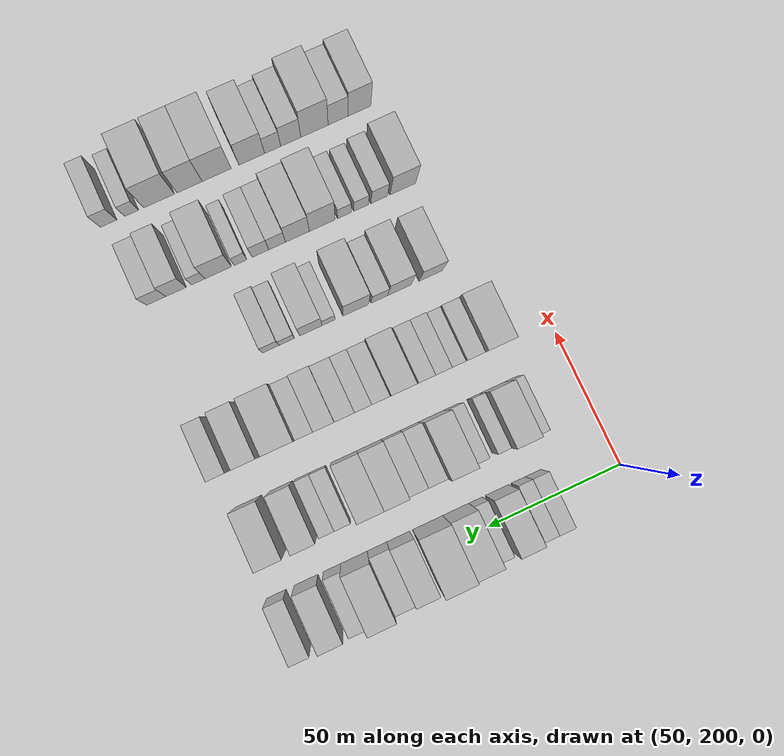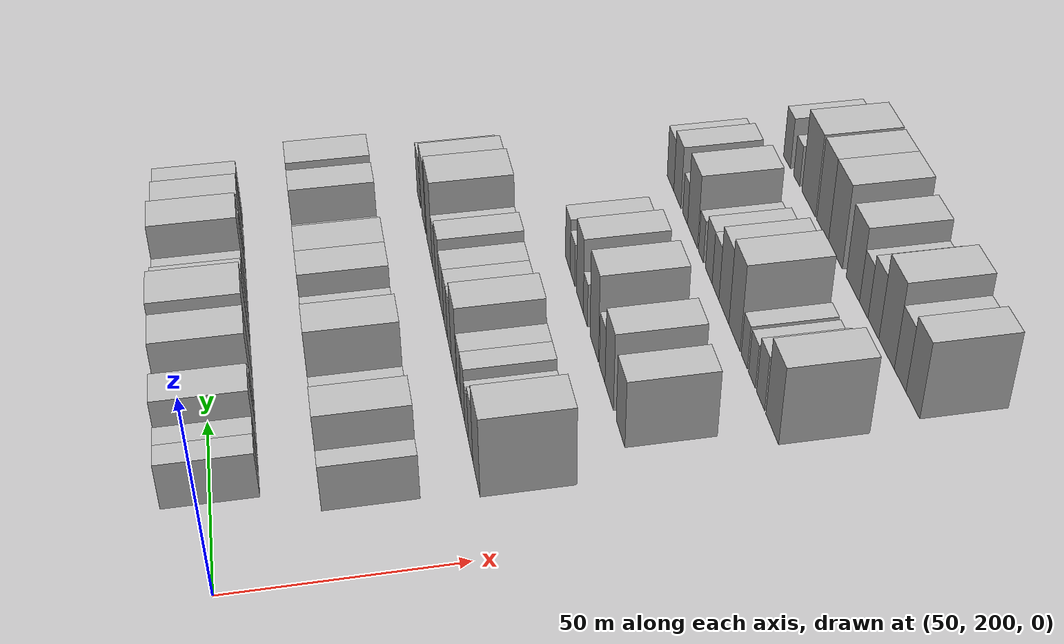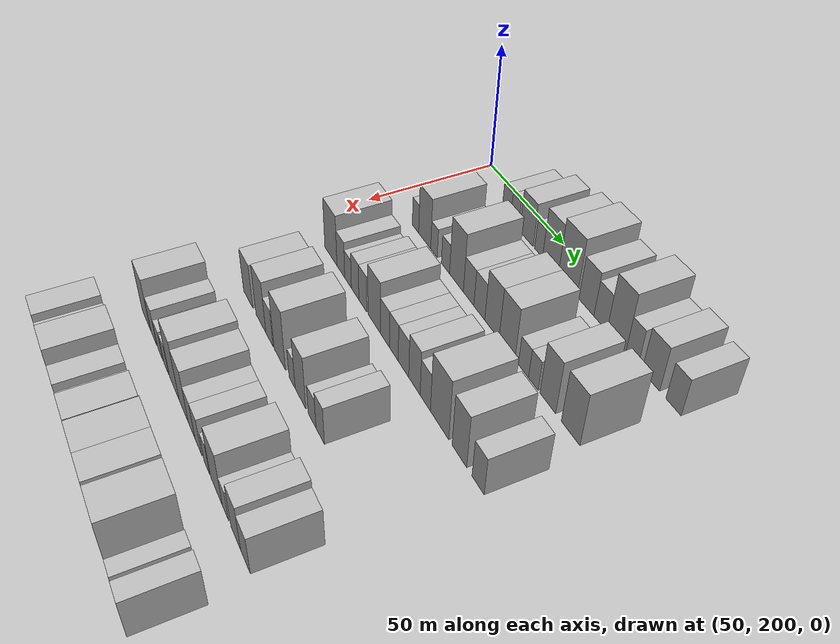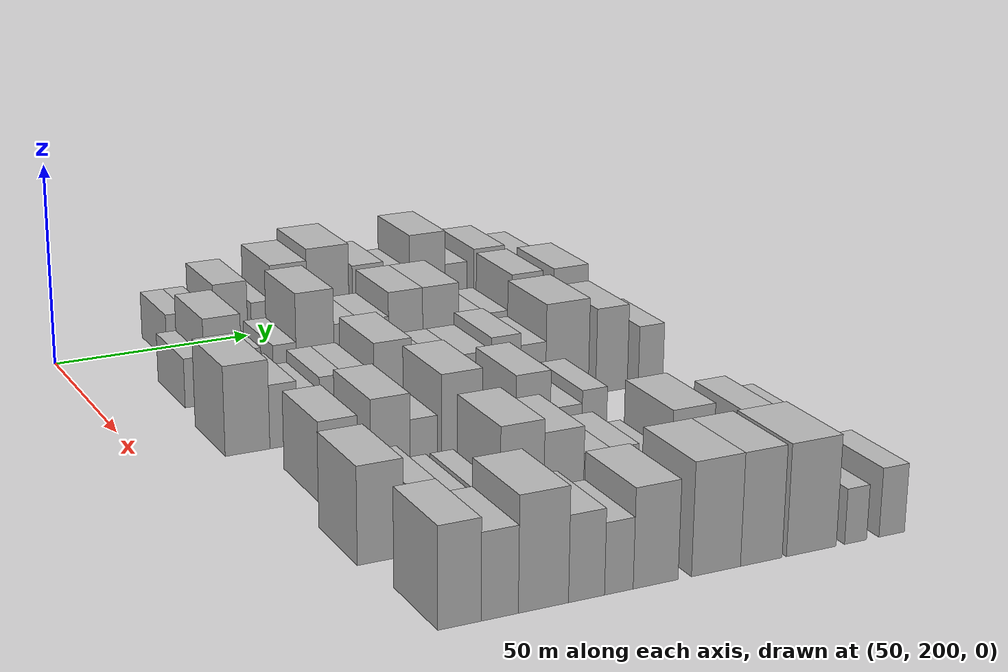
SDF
<sdf version="1.6">
 <world name="default">
  <model name="building_85">
   <static>1</static>
   <pose>50.0000 228.2550 0 0.000000 0.000000 0.000000</pose>
   <link name="link">
    <pose>0 0 6.00 0 0 0</pose>
    <collision name="collision"><geometry><box><size>20.0000 5.9836 12.0000</size></box></geometry></collision>
    <visual name="visual">
     <cast_shadows>0</cast_shadows>
     <geometry><box><size>20.0000 5.9836 12.0000</size></box></geometry>
     <material>
      <script>
       <uri>model://HANNAS_wall/materials/scripts</uri>
       <uri>model://HANNAS_wall/materials/textures</uri>
       <name>vrc/HANNAS_wall</name>
      </script>
     </material>
    </visual>
   </link>
  </model>
  <model name="building_86">
   <static>1</static>
   <pose>50.0000 233.9124 0 0.000000 0.000000 0.000000</pose>
   <link name="link">
    <pose>0 0 6.00 0 0 0</pose>
    <collision name="collision"><geometry><box><size>20.0000 5.3313 12.0000</size></box></geometry></collision>
    <visual name="visual">
     <cast_shadows>0</cast_shadows>
     <geometry><box><size>20.0000 5.3313 12.0000</size></box></geometry>
     <material>
      <script>
       <uri>model://HANNAS_wall/materials/scripts</uri>
       <uri>model://HANNAS_wall/materials/textures</uri>
       <name>vrc/HANNAS_wall</name>
      </script>
     </material>
    </visual>
   </link>
  </model>
  <model name="building_87">
   <static>1</static>
   <pose>50.0000 241.9950 0 0.000000 0.000000 0.000000</pose>
   <link name="link">
    <pose>0 0 9.00 0 0 0</pose>
    <collision name="collision"><geometry><box><size>20.0000 8.8340 18.0000</size></box></geometry></collision>
    <visual name="visual">
     <cast_shadows>0</cast_shadows>
     <geometry><box><size>20.0000 8.8340 18.0000</size></box></geometry>
     <material>
      <script>
       <uri>model://HANNAS_wall/materials/scripts</uri>
       <uri>model://HANNAS_wall/materials/textures</uri>
       <name>vrc/HANNAS_wall</name>
      </script>
     </material>
    </visual>
   </link>
  </model>
  <model name="building_88">
   <static>1</static>
   <pose>50.0000 249.9725 0 0.000000 0.000000 0.000000</pose>
   <link name="link">
    <pose>0 0 6.00 0 0 0</pose>
    <collision name="collision"><geometry><box><size>20.0000 5.1209 12.0000</size></box></geometry></collision>
    <visual name="visual">
     <cast_shadows>0</cast_shadows>
     <geometry><box><size>20.0000 5.1209 12.0000</size></box></geometry>
     <material>
      <script>
       <uri>model://HANNAS_wall/materials/scripts</uri>
       <uri>model://HANNAS_wall/materials/textures</uri>
       <name>vrc/HANNAS_wall</name>
      </script>
     </material>
    </visual>
   </link>
  </model>
  <model name="building_89">
   <static>1</static>
   <pose>50.0000 257.4342 0 0.000000 0.000000 0.000000</pose>
   <link name="link">
    <pose>0 0 10.50 0 0 0</pose>
    <collision name="collision"><geometry><box><size>20.0000 9.8025 21.0000</size></box></geometry></collision>
    <visual name="visual">
     <cast_shadows>0</cast_shadows>
     <geometry><box><size>20.0000 9.8025 21.0000</size></box></geometry>
     <material>
      <script>
       <uri>model://HANNAS_wall/materials/scripts</uri>
       <uri>model://HANNAS_wall/materials/textures</uri>
       <name>vrc/HANNAS_wall</name>
      </script>
     </material>
    </visual>
   </link>
  </model>
  <model name="building_90">
   <static>1</static>
   <pose>50.0000 268.0178 0 0.000000 0.000000 0.000000</pose>
   <link name="link">
    <pose>0 0 12.00 0 0 0</pose>
    <collision name="collision"><geometry><box><size>20.0000 11.3646 24.0000</size></box></geometry></collision>
    <visual name="visual">
     <cast_shadows>0</cast_shadows>
     <geometry><box><size>20.0000 11.3646 24.0000</size></box></geometry>
     <material>
      <script>
       <uri>model://HANNAS_wall/materials/scripts</uri>
       <uri>model://HANNAS_wall/materials/textures</uri>
       <name>vrc/HANNAS_wall</name>
      </script>
     </material>
    </visual>
   </link>
  </model>
  <model name="building_91">
   <static>1</static>
   <pose>50.0000 278.9968 0 0.000000 0.000000 0.000000</pose>
   <link name="link">
    <pose>0 0 9.00 0 0 0</pose>
    <collision name="collision"><geometry><box><size>20.0000 8.5935 18.0000</size></box></geometry></collision>
    <visual name="visual">
     <cast_shadows>0</cast_shadows>
     <geometry><box><size>20.0000 8.5935 18.0000</size></box></geometry>
     <material>
      <script>
       <uri>model://HANNAS_wall/materials/scripts</uri>
       <uri>model://HANNAS_wall/materials/textures</uri>
       <name>vrc/HANNAS_wall</name>
      </script>
     </material>
    </visual>
   </link>
  </model>
  <model name="building_92">
   <static>1</static>
   <pose>50.0000 286.9134 0 0.000000 0.000000 0.000000</pose>
   <link name="link">
    <pose>0 0 7.50 0 0 0</pose>
    <collision name="collision"><geometry><box><size>20.0000 7.2398 15.0000</size></box></geometry></collision>
    <visual name="visual">
     <cast_shadows>0</cast_shadows>
     <geometry><box><size>20.0000 7.2398 15.0000</size></box></geometry>
     <material>
      <script>
       <uri>model://HANNAS_wall/materials/scripts</uri>
       <uri>model://HANNAS_wall/materials/textures</uri>
       <name>vrc/HANNAS_wall</name>
      </script>
     </material>
    </visual>
   </link>
  </model>
  <model name="building_93">
   <static>1</static>
   <pose>50.0000 295.5445 0 0.000000 0.000000 0.000000</pose>
   <link name="link">
    <pose>0 0 12.00 0 0 0</pose>
    <collision name="collision"><geometry><box><size>20.0000 10.0222 24.0000</size></box></geometry></collision>
    <visual name="visual">
     <cast_shadows>0</cast_shadows>
     <geometry><box><size>20.0000 10.0222 24.0000</size></box></geometry>
     <material>
      <script>
       <uri>model://HANNAS_wall/materials/scripts</uri>
       <uri>model://HANNAS_wall/materials/textures</uri>
       <name>vrc/HANNAS_wall</name>
      </script>
     </material>
    </visual>
   </link>
  </model>
  <model name="building_94">
   <static>1</static>
   <pose>50.0000 303.7026 0 0.000000 0.000000 0.000000</pose>
   <link name="link">
    <pose>0 0 7.50 0 0 0</pose>
    <collision name="collision"><geometry><box><size>20.0000 6.2941 15.0000</size></box></geometry></collision>
    <visual name="visual">
     <cast_shadows>0</cast_shadows>
     <geometry><box><size>20.0000 6.2941 15.0000</size></box></geometry>
     <material>
      <script>
       <uri>model://HANNAS_wall/materials/scripts</uri>
       <uri>model://HANNAS_wall/materials/textures</uri>
       <name>vrc/HANNAS_wall</name>
      </script>
     </material>
    </visual>
   </link>
  </model>
  <model name="building_95">
   <static>1</static>
   <pose>50.0000 313.2259 0 0.000000 0.000000 0.000000</pose>
   <link name="link">
    <pose>0 0 9.00 0 0 0</pose>
    <collision name="collision"><geometry><box><size>20.0000 8.7524 18.0000</size></box></geometry></collision>
    <visual name="visual">
     <cast_shadows>0</cast_shadows>
     <geometry><box><size>20.0000 8.7524 18.0000</size></box></geometry>
     <material>
      <script>
       <uri>model://HANNAS_wall/materials/scripts</uri>
       <uri>model://HANNAS_wall/materials/textures</uri>
       <name>vrc/HANNAS_wall</name>
      </script>
     </material>
    </visual>
   </link>
  </model>
  <model name="building_96">
   <static>1</static>
   <pose>50.0000 324.1978 0 0.000000 0.000000 0.000000</pose>
   <link name="link">
    <pose>0 0 7.50 0 0 0</pose>
    <collision name="collision"><geometry><box><size>20.0000 7.1914 15.0000</size></box></geometry></collision>
    <visual name="visual">
     <cast_shadows>0</cast_shadows>
     <geometry><box><size>20.0000 7.1914 15.0000</size></box></geometry>
     <material>
      <script>
       <uri>model://HANNAS_wall/materials/scripts</uri>
       <uri>model://HANNAS_wall/materials/textures</uri>
       <name>vrc/HANNAS_wall</name>
      </script>
     </material>
    </visual>
   </link>
  </model>
  <model name="building_206">
   <static>1</static>
   <pose>82.0000 221.4658 0 0.000000 0.000000 0.000000</pose>
   <link name="link">
    <pose>0 0 6.00 0 0 0</pose>
    <collision name="collision"><geometry><box><size>20.0000 4.9080 12.0000</size></box></geometry></collision>
    <visual name="visual">
     <cast_shadows>0</cast_shadows>
     <geometry><box><size>20.0000 4.9080 12.0000</size></box></geometry>
     <material>
      <script>
       <uri>model://HANNAS_wall/materials/scripts</uri>
       <uri>model://HANNAS_wall/materials/textures</uri>
       <name>vrc/HANNAS_wall</name>
      </script>
     </material>
    </visual>
   </link>
  </model>
  <model name="building_207">
   <static>1</static>
   <pose>82.0000 228.5116 0 0.000000 0.000000 0.000000</pose>
   <link name="link">
    <pose>0 0 10.50 0 0 0</pose>
    <collision name="collision"><geometry><box><size>20.0000 9.1836 21.0000</size></box></geometry></collision>
    <visual name="visual">
     <cast_shadows>0</cast_shadows>
     <geometry><box><size>20.0000 9.1836 21.0000</size></box></geometry>
     <material>
      <script>
       <uri>model://HANNAS_wall/materials/scripts</uri>
       <uri>model://HANNAS_wall/materials/textures</uri>
       <name>vrc/HANNAS_wall</name>
      </script>
     </material>
    </visual>
   </link>
  </model>
  <model name="building_208">
   <static>1</static>
   <pose>82.0000 235.5467 0 0.000000 0.000000 0.000000</pose>
   <link name="link">
    <pose>0 0 6.00 0 0 0</pose>
    <collision name="collision"><geometry><box><size>20.0000 4.8866 12.0000</size></box></geometry></collision>
    <visual name="visual">
     <cast_shadows>0</cast_shadows>
     <geometry><box><size>20.0000 4.8866 12.0000</size></box></geometry>
     <material>
      <script>
       <uri>model://HANNAS_wall/materials/scripts</uri>
       <uri>model://HANNAS_wall/materials/textures</uri>
       <name>vrc/HANNAS_wall</name>
      </script>
     </material>
    </visual>
   </link>
  </model>
  <model name="building_209">
   <static>1</static>
   <pose>82.0000 243.9014 0 0.000000 0.000000 0.000000</pose>
   <link name="link">
    <pose>0 0 6.00 0 0 0</pose>
    <collision name="collision"><geometry><box><size>20.0000 5.8229 12.0000</size></box></geometry></collision>
    <visual name="visual">
     <cast_shadows>0</cast_shadows>
     <geometry><box><size>20.0000 5.8229 12.0000</size></box></geometry>
     <material>
      <script>
       <uri>model://HANNAS_wall/materials/scripts</uri>
       <uri>model://HANNAS_wall/materials/textures</uri>
       <name>vrc/HANNAS_wall</name>
      </script>
     </material>
    </visual>
   </link>
  </model>
  <model name="building_210">
   <static>1</static>
   <pose>82.0000 251.6301 0 0.000000 0.000000 0.000000</pose>
   <link name="link">
    <pose>0 0 12.00 0 0 0</pose>
    <collision name="collision"><geometry><box><size>20.0000 9.6344 24.0000</size></box></geometry></collision>
    <visual name="visual">
     <cast_shadows>0</cast_shadows>
     <geometry><box><size>20.0000 9.6344 24.0000</size></box></geometry>
     <material>
      <script>
       <uri>model://HANNAS_wall/materials/scripts</uri>
       <uri>model://HANNAS_wall/materials/textures</uri>
       <name>vrc/HANNAS_wall</name>
      </script>
     </material>
    </visual>
   </link>
  </model>
  <model name="building_211">
   <static>1</static>
   <pose>82.0000 259.9868 0 0.000000 0.000000 0.000000</pose>
   <link name="link">
    <pose>0 0 7.50 0 0 0</pose>
    <collision name="collision"><geometry><box><size>20.0000 7.0791 15.0000</size></box></geometry></collision>
    <visual name="visual">
     <cast_shadows>0</cast_shadows>
     <geometry><box><size>20.0000 7.0791 15.0000</size></box></geometry>
     <material>
      <script>
       <uri>model://HANNAS_wall/materials/scripts</uri>
       <uri>model://HANNAS_wall/materials/textures</uri>
       <name>vrc/HANNAS_wall</name>
      </script>
     </material>
    </visual>
   </link>
  </model>
  <model name="building_212">
   <static>1</static>
   <pose>82.0000 267.0777 0 0.000000 0.000000 0.000000</pose>
   <link name="link">
    <pose>0 0 7.50 0 0 0</pose>
    <collision name="collision"><geometry><box><size>20.0000 7.1027 15.0000</size></box></geometry></collision>
    <visual name="visual">
     <cast_shadows>0</cast_shadows>
     <geometry><box><size>20.0000 7.1027 15.0000</size></box></geometry>
     <material>
      <script>
       <uri>model://HANNAS_wall/materials/scripts</uri>
       <uri>model://HANNAS_wall/materials/textures</uri>
       <name>vrc/HANNAS_wall</name>
      </script>
     </material>
    </visual>
   </link>
  </model>
  <model name="building_213">
   <static>1</static>
   <pose>82.0000 275.1325 0 0.000000 0.000000 0.000000</pose>
   <link name="link">
    <pose>0 0 10.50 0 0 0</pose>
    <collision name="collision"><geometry><box><size>20.0000 9.0069 21.0000</size></box></geometry></collision>
    <visual name="visual">
     <cast_shadows>0</cast_shadows>
     <geometry><box><size>20.0000 9.0069 21.0000</size></box></geometry>
     <material>
      <script>
       <uri>model://HANNAS_wall/materials/scripts</uri>
       <uri>model://HANNAS_wall/materials/textures</uri>
       <name>vrc/HANNAS_wall</name>
      </script>
     </material>
    </visual>
   </link>
  </model>
  <model name="building_214">
   <static>1</static>
   <pose>82.0000 284.4555 0 0.000000 0.000000 0.000000</pose>
   <link name="link">
    <pose>0 0 10.50 0 0 0</pose>
    <collision name="collision"><geometry><box><size>20.0000 9.6390 21.0000</size></box></geometry></collision>
    <visual name="visual">
     <cast_shadows>0</cast_shadows>
     <geometry><box><size>20.0000 9.6390 21.0000</size></box></geometry>
     <material>
      <script>
       <uri>model://HANNAS_wall/materials/scripts</uri>
       <uri>model://HANNAS_wall/materials/textures</uri>
       <name>vrc/HANNAS_wall</name>
      </script>
     </material>
    </visual>
   </link>
  </model>
  <model name="building_215">
   <static>1</static>
   <pose>82.0000 294.2272 0 0.000000 0.000000 0.000000</pose>
   <link name="link">
    <pose>0 0 6.00 0 0 0</pose>
    <collision name="collision"><geometry><box><size>20.0000 5.9044 12.0000</size></box></geometry></collision>
    <visual name="visual">
     <cast_shadows>0</cast_shadows>
     <geometry><box><size>20.0000 5.9044 12.0000</size></box></geometry>
     <material>
      <script>
       <uri>model://HANNAS_wall/materials/scripts</uri>
       <uri>model://HANNAS_wall/materials/textures</uri>
       <name>vrc/HANNAS_wall</name>
      </script>
     </material>
    </visual>
   </link>
  </model>
  <model name="building_216">
   <static>1</static>
   <pose>82.0000 299.9177 0 0.000000 0.000000 0.000000</pose>
   <link name="link">
    <pose>0 0 6.00 0 0 0</pose>
    <collision name="collision"><geometry><box><size>20.0000 5.4766 12.0000</size></box></geometry></collision>
    <visual name="visual">
     <cast_shadows>0</cast_shadows>
     <geometry><box><size>20.0000 5.4766 12.0000</size></box></geometry>
     <material>
      <script>
       <uri>model://HANNAS_wall/materials/scripts</uri>
       <uri>model://HANNAS_wall/materials/textures</uri>
       <name>vrc/HANNAS_wall</name>
      </script>
     </material>
    </visual>
   </link>
  </model>
  <model name="building_217">
   <static>1</static>
   <pose>82.0000 307.9334 0 0.000000 0.000000 0.000000</pose>
   <link name="link">
    <pose>0 0 10.50 0 0 0</pose>
    <collision name="collision"><geometry><box><size>20.0000 8.5548 21.0000</size></box></geometry></collision>
    <visual name="visual">
     <cast_shadows>0</cast_shadows>
     <geometry><box><size>20.0000 8.5548 21.0000</size></box></geometry>
     <material>
      <script>
       <uri>model://HANNAS_wall/materials/scripts</uri>
       <uri>model://HANNAS_wall/materials/textures</uri>
       <name>vrc/HANNAS_wall</name>
      </script>
     </material>
    </visual>
   </link>
  </model>
  <model name="building_218">
   <static>1</static>
   <pose>82.0000 320.0268 0 0.000000 0.000000 0.000000</pose>
   <link name="link">
    <pose>0 0 10.50 0 0 0</pose>
    <collision name="collision"><geometry><box><size>20.0000 9.6320 21.0000</size></box></geometry></collision>
    <visual name="visual">
     <cast_shadows>0</cast_shadows>
     <geometry><box><size>20.0000 9.6320 21.0000</size></box></geometry>
     <material>
      <script>
       <uri>model://HANNAS_wall/materials/scripts</uri>
       <uri>model://HANNAS_wall/materials/textures</uri>
       <name>vrc/HANNAS_wall</name>
      </script>
     </material>
    </visual>
   </link>
  </model>
  <model name="building_321">
   <static>1</static>
   <pose>114.0000 222.5575 0 0.000000 0.000000 0.000000</pose>
   <link name="link">
    <pose>0 0 10.50 0 0 0</pose>
    <collision name="collision"><geometry><box><size>20.0000 10.4866 21.0000</size></box></geometry></collision>
    <visual name="visual">
     <cast_shadows>0</cast_shadows>
     <geometry><box><size>20.0000 10.4866 21.0000</size></box></geometry>
     <material>
      <script>
       <uri>model://HANNAS_wall/materials/scripts</uri>
       <uri>model://HANNAS_wall/materials/textures</uri>
       <name>vrc/HANNAS_wall</name>
      </script>
     </material>
    </visual>
   </link>
  </model>
  <model name="building_322">
   <static>1</static>
   <pose>114.0000 231.0720 0 0.000000 0.000000 0.000000</pose>
   <link name="link">
    <pose>0 0 7.50 0 0 0</pose>
    <collision name="collision"><geometry><box><size>20.0000 6.5423 15.0000</size></box></geometry></collision>
    <visual name="visual">
     <cast_shadows>0</cast_shadows>
     <geometry><box><size>20.0000 6.5423 15.0000</size></box></geometry>
     <material>
      <script>
       <uri>model://HANNAS_wall/materials/scripts</uri>
       <uri>model://HANNAS_wall/materials/textures</uri>
       <name>vrc/HANNAS_wall</name>
      </script>
     </material>
    </visual>
   </link>
  </model>
  <model name="building_323">
   <static>1</static>
   <pose>114.0000 237.0703 0 0.000000 0.000000 0.000000</pose>
   <link name="link">
    <pose>0 0 6.00 0 0 0</pose>
    <collision name="collision"><geometry><box><size>20.0000 5.4543 12.0000</size></box></geometry></collision>
    <visual name="visual">
     <cast_shadows>0</cast_shadows>
     <geometry><box><size>20.0000 5.4543 12.0000</size></box></geometry>
     <material>
      <script>
       <uri>model://HANNAS_wall/materials/scripts</uri>
       <uri>model://HANNAS_wall/materials/textures</uri>
       <name>vrc/HANNAS_wall</name>
      </script>
     </material>
    </visual>
   </link>
  </model>
  <model name="building_324">
   <static>1</static>
   <pose>114.0000 242.8027 0 0.000000 0.000000 0.000000</pose>
   <link name="link">
    <pose>0 0 7.50 0 0 0</pose>
    <collision name="collision"><geometry><box><size>20.0000 6.0105 15.0000</size></box></geometry></collision>
    <visual name="visual">
     <cast_shadows>0</cast_shadows>
     <geometry><box><size>20.0000 6.0105 15.0000</size></box></geometry>
     <material>
      <script>
       <uri>model://HANNAS_wall/materials/scripts</uri>
       <uri>model://HANNAS_wall/materials/textures</uri>
       <name>vrc/HANNAS_wall</name>
      </script>
     </material>
    </visual>
   </link>
  </model>
  <model name="building_325">
   <static>1</static>
   <pose>114.0000 248.8912 0 0.000000 0.000000 0.000000</pose>
   <link name="link">
    <pose>0 0 7.50 0 0 0</pose>
    <collision name="collision"><geometry><box><size>20.0000 6.1665 15.0000</size></box></geometry></collision>
    <visual name="visual">
     <cast_shadows>0</cast_shadows>
     <geometry><box><size>20.0000 6.1665 15.0000</size></box></geometry>
     <material>
      <script>
       <uri>model://HANNAS_wall/materials/scripts</uri>
       <uri>model://HANNAS_wall/materials/textures</uri>
       <name>vrc/HANNAS_wall</name>
      </script>
     </material>
    </visual>
   </link>
  </model>
  <model name="building_326">
   <static>1</static>
   <pose>114.0000 257.5870 0 0.000000 0.000000 0.000000</pose>
   <link name="link">
    <pose>0 0 10.50 0 0 0</pose>
    <collision name="collision"><geometry><box><size>20.0000 9.2252 21.0000</size></box></geometry></collision>
    <visual name="visual">
     <cast_shadows>0</cast_shadows>
     <geometry><box><size>20.0000 9.2252 21.0000</size></box></geometry>
     <material>
      <script>
       <uri>model://HANNAS_wall/materials/scripts</uri>
       <uri>model://HANNAS_wall/materials/textures</uri>
       <name>vrc/HANNAS_wall</name>
      </script>
     </material>
    </visual>
   </link>
  </model>
  <model name="building_327">
   <static>1</static>
   <pose>114.0000 265.5201 0 0.000000 0.000000 0.000000</pose>
   <link name="link">
    <pose>0 0 7.50 0 0 0</pose>
    <collision name="collision"><geometry><box><size>20.0000 6.6410 15.0000</size></box></geometry></collision>
    <visual name="visual">
     <cast_shadows>0</cast_shadows>
     <geometry><box><size>20.0000 6.6410 15.0000</size></box></geometry>
     <material>
      <script>
       <uri>model://HANNAS_wall/materials/scripts</uri>
       <uri>model://HANNAS_wall/materials/textures</uri>
       <name>vrc/HANNAS_wall</name>
      </script>
     </material>
    </visual>
   </link>
  </model>
  <model name="building_328">
   <static>1</static>
   <pose>114.0000 271.9463 0 0.000000 0.000000 0.000000</pose>
   <link name="link">
    <pose>0 0 7.50 0 0 0</pose>
    <collision name="collision"><geometry><box><size>20.0000 6.2114 15.0000</size></box></geometry></collision>
    <visual name="visual">
     <cast_shadows>0</cast_shadows>
     <geometry><box><size>20.0000 6.2114 15.0000</size></box></geometry>
     <material>
      <script>
       <uri>model://HANNAS_wall/materials/scripts</uri>
       <uri>model://HANNAS_wall/materials/textures</uri>
       <name>vrc/HANNAS_wall</name>
      </script>
     </material>
    </visual>
   </link>
  </model>
  <model name="building_329">
   <static>1</static>
   <pose>114.0000 278.6892 0 0.000000 0.000000 0.000000</pose>
   <link name="link">
    <pose>0 0 7.50 0 0 0</pose>
    <collision name="collision"><geometry><box><size>20.0000 7.2745 15.0000</size></box></geometry></collision>
    <visual name="visual">
     <cast_shadows>0</cast_shadows>
     <geometry><box><size>20.0000 7.2745 15.0000</size></box></geometry>
     <material>
      <script>
       <uri>model://HANNAS_wall/materials/scripts</uri>
       <uri>model://HANNAS_wall/materials/textures</uri>
       <name>vrc/HANNAS_wall</name>
      </script>
     </material>
    </visual>
   </link>
  </model>
  <model name="building_330">
   <static>1</static>
   <pose>114.0000 286.0981 0 0.000000 0.000000 0.000000</pose>
   <link name="link">
    <pose>0 0 9.00 0 0 0</pose>
    <collision name="collision"><geometry><box><size>20.0000 7.5433 18.0000</size></box></geometry></collision>
    <visual name="visual">
     <cast_shadows>0</cast_shadows>
     <geometry><box><size>20.0000 7.5433 18.0000</size></box></geometry>
     <material>
      <script>
       <uri>model://HANNAS_wall/materials/scripts</uri>
       <uri>model://HANNAS_wall/materials/textures</uri>
       <name>vrc/HANNAS_wall</name>
      </script>
     </material>
    </visual>
   </link>
  </model>
  <model name="building_331">
   <static>1</static>
   <pose>114.0000 293.1798 0 0.000000 0.000000 0.000000</pose>
   <link name="link">
    <pose>0 0 7.50 0 0 0</pose>
    <collision name="collision"><geometry><box><size>20.0000 6.6201 15.0000</size></box></geometry></collision>
    <visual name="visual">
     <cast_shadows>0</cast_shadows>
     <geometry><box><size>20.0000 6.6201 15.0000</size></box></geometry>
     <material>
      <script>
       <uri>model://HANNAS_wall/materials/scripts</uri>
       <uri>model://HANNAS_wall/materials/textures</uri>
       <name>vrc/HANNAS_wall</name>
      </script>
     </material>
    </visual>
   </link>
  </model>
  <model name="building_332">
   <static>1</static>
   <pose>114.0000 302.1753 0 0.000000 0.000000 0.000000</pose>
   <link name="link">
    <pose>0 0 12.00 0 0 0</pose>
    <collision name="collision"><geometry><box><size>20.0000 11.3710 24.0000</size></box></geometry></collision>
    <visual name="visual">
     <cast_shadows>0</cast_shadows>
     <geometry><box><size>20.0000 11.3710 24.0000</size></box></geometry>
     <material>
      <script>
       <uri>model://HANNAS_wall/materials/scripts</uri>
       <uri>model://HANNAS_wall/materials/textures</uri>
       <name>vrc/HANNAS_wall</name>
      </script>
     </material>
    </visual>
   </link>
  </model>
  <model name="building_333">
   <static>1</static>
   <pose>114.0000 314.1218 0 0.000000 0.000000 0.000000</pose>
   <link name="link">
    <pose>0 0 10.50 0 0 0</pose>
    <collision name="collision"><geometry><box><size>20.0000 8.5222 21.0000</size></box></geometry></collision>
    <visual name="visual">
     <cast_shadows>0</cast_shadows>
     <geometry><box><size>20.0000 8.5222 21.0000</size></box></geometry>
     <material>
      <script>
       <uri>model://HANNAS_wall/materials/scripts</uri>
       <uri>model://HANNAS_wall/materials/textures</uri>
       <name>vrc/HANNAS_wall</name>
      </script>
     </material>
    </visual>
   </link>
  </model>
  <model name="building_334">
   <static>1</static>
   <pose>114.0000 324.7638 0 0.000000 0.000000 0.000000</pose>
   <link name="link">
    <pose>0 0 7.50 0 0 0</pose>
    <collision name="collision"><geometry><box><size>20.0000 6.7618 15.0000</size></box></geometry></collision>
    <visual name="visual">
     <cast_shadows>0</cast_shadows>
     <geometry><box><size>20.0000 6.7618 15.0000</size></box></geometry>
     <material>
      <script>
       <uri>model://HANNAS_wall/materials/scripts</uri>
       <uri>model://HANNAS_wall/materials/textures</uri>
       <name>vrc/HANNAS_wall</name>
      </script>
     </material>
    </visual>
   </link>
  </model>
  <model name="building_437">
   <static>1</static>
   <pose>146.0000 230.9308 0 0.000000 0.000000 0.000000</pose>
   <link name="link">
    <pose>0 0 9.00 0 0 0</pose>
    <collision name="collision"><geometry><box><size>20.0000 8.8910 18.0000</size></box></geometry></collision>
    <visual name="visual">
     <cast_shadows>0</cast_shadows>
     <geometry><box><size>20.0000 8.8910 18.0000</size></box></geometry>
     <material>
      <script>
       <uri>model://HANNAS_wall/materials/scripts</uri>
       <uri>model://HANNAS_wall/materials/textures</uri>
       <name>vrc/HANNAS_wall</name>
      </script>
     </material>
    </visual>
   </link>
  </model>
  <model name="building_438">
   <static>1</static>
   <pose>146.0000 242.9021 0 0.000000 0.000000 0.000000</pose>
   <link name="link">
    <pose>0 0 10.50 0 0 0</pose>
    <collision name="collision"><geometry><box><size>20.0000 9.0518 21.0000</size></box></geometry></collision>
    <visual name="visual">
     <cast_shadows>0</cast_shadows>
     <geometry><box><size>20.0000 9.0518 21.0000</size></box></geometry>
     <material>
      <script>
       <uri>model://HANNAS_wall/materials/scripts</uri>
       <uri>model://HANNAS_wall/materials/textures</uri>
       <name>vrc/HANNAS_wall</name>
      </script>
     </material>
    </visual>
   </link>
  </model>
  <model name="building_439">
   <static>1</static>
   <pose>146.0000 250.6000 0 0.000000 0.000000 0.000000</pose>
   <link name="link">
    <pose>0 0 7.50 0 0 0</pose>
    <collision name="collision"><geometry><box><size>20.0000 6.3439 15.0000</size></box></geometry></collision>
    <visual name="visual">
     <cast_shadows>0</cast_shadows>
     <geometry><box><size>20.0000 6.3439 15.0000</size></box></geometry>
     <material>
      <script>
       <uri>model://HANNAS_wall/materials/scripts</uri>
       <uri>model://HANNAS_wall/materials/textures</uri>
       <name>vrc/HANNAS_wall</name>
      </script>
     </material>
    </visual>
   </link>
  </model>
  <model name="building_440">
   <static>1</static>
   <pose>146.0000 259.6341 0 0.000000 0.000000 0.000000</pose>
   <link name="link">
    <pose>0 0 12.00 0 0 0</pose>
    <collision name="collision"><geometry><box><size>20.0000 9.7243 24.0000</size></box></geometry></collision>
    <visual name="visual">
     <cast_shadows>0</cast_shadows>
     <geometry><box><size>20.0000 9.7243 24.0000</size></box></geometry>
     <material>
      <script>
       <uri>model://HANNAS_wall/materials/scripts</uri>
       <uri>model://HANNAS_wall/materials/textures</uri>
       <name>vrc/HANNAS_wall</name>
      </script>
     </material>
    </visual>
   </link>
  </model>
  <model name="building_441">
   <static>1</static>
   <pose>146.0000 269.9847 0 0.000000 0.000000 0.000000</pose>
   <link name="link">
    <pose>0 0 6.00 0 0 0</pose>
    <collision name="collision"><geometry><box><size>20.0000 4.9768 12.0000</size></box></geometry></collision>
    <visual name="visual">
     <cast_shadows>0</cast_shadows>
     <geometry><box><size>20.0000 4.9768 12.0000</size></box></geometry>
     <material>
      <script>
       <uri>model://HANNAS_wall/materials/scripts</uri>
       <uri>model://HANNAS_wall/materials/textures</uri>
       <name>vrc/HANNAS_wall</name>
      </script>
     </material>
    </visual>
   </link>
  </model>
  <model name="building_442">
   <static>1</static>
   <pose>146.0000 276.6775 0 0.000000 0.000000 0.000000</pose>
   <link name="link">
    <pose>0 0 10.50 0 0 0</pose>
    <collision name="collision"><geometry><box><size>20.0000 8.4089 21.0000</size></box></geometry></collision>
    <visual name="visual">
     <cast_shadows>0</cast_shadows>
     <geometry><box><size>20.0000 8.4089 21.0000</size></box></geometry>
     <material>
      <script>
       <uri>model://HANNAS_wall/materials/scripts</uri>
       <uri>model://HANNAS_wall/materials/textures</uri>
       <name>vrc/HANNAS_wall</name>
      </script>
     </material>
    </visual>
   </link>
  </model>
  <model name="building_443">
   <static>1</static>
   <pose>146.0000 285.7992 0 0.000000 0.000000 0.000000</pose>
   <link name="link">
    <pose>0 0 6.00 0 0 0</pose>
    <collision name="collision"><geometry><box><size>20.0000 5.8344 12.0000</size></box></geometry></collision>
    <visual name="visual">
     <cast_shadows>0</cast_shadows>
     <geometry><box><size>20.0000 5.8344 12.0000</size></box></geometry>
     <material>
      <script>
       <uri>model://HANNAS_wall/materials/scripts</uri>
       <uri>model://HANNAS_wall/materials/textures</uri>
       <name>vrc/HANNAS_wall</name>
      </script>
     </material>
    </visual>
   </link>
  </model>
  <model name="building_444">
   <static>1</static>
   <pose>146.0000 291.8155 0 0.000000 0.000000 0.000000</pose>
   <link name="link">
    <pose>0 0 7.50 0 0 0</pose>
    <collision name="collision"><geometry><box><size>20.0000 6.1982 15.0000</size></box></geometry></collision>
    <visual name="visual">
     <cast_shadows>0</cast_shadows>
     <geometry><box><size>20.0000 6.1982 15.0000</size></box></geometry>
     <material>
      <script>
       <uri>model://HANNAS_wall/materials/scripts</uri>
       <uri>model://HANNAS_wall/materials/textures</uri>
       <name>vrc/HANNAS_wall</name>
      </script>
     </material>
    </visual>
   </link>
  </model>
  <model name="building_547">
   <static>1</static>
   <pose>178.0000 226.6035 0 0.000000 0.000000 0.000000</pose>
   <link name="link">
    <pose>0 0 10.50 0 0 0</pose>
    <collision name="collision"><geometry><box><size>20.0000 9.8962 21.0000</size></box></geometry></collision>
    <visual name="visual">
     <cast_shadows>0</cast_shadows>
     <geometry><box><size>20.0000 9.8962 21.0000</size></box></geometry>
     <material>
      <script>
       <uri>model://HANNAS_wall/materials/scripts</uri>
       <uri>model://HANNAS_wall/materials/textures</uri>
       <name>vrc/HANNAS_wall</name>
      </script>
     </material>
    </visual>
   </link>
  </model>
  <model name="building_548">
   <static>1</static>
   <pose>178.0000 235.7569 0 0.000000 0.000000 0.000000</pose>
   <link name="link">
    <pose>0 0 7.50 0 0 0</pose>
    <collision name="collision"><geometry><box><size>20.0000 6.4106 15.0000</size></box></geometry></collision>
    <visual name="visual">
     <cast_shadows>0</cast_shadows>
     <geometry><box><size>20.0000 6.4106 15.0000</size></box></geometry>
     <material>
      <script>
       <uri>model://HANNAS_wall/materials/scripts</uri>
       <uri>model://HANNAS_wall/materials/textures</uri>
       <name>vrc/HANNAS_wall</name>
      </script>
     </material>
    </visual>
   </link>
  </model>
  <model name="building_549">
   <static>1</static>
   <pose>178.0000 242.7767 0 0.000000 0.000000 0.000000</pose>
   <link name="link">
    <pose>0 0 6.00 0 0 0</pose>
    <collision name="collision"><geometry><box><size>20.0000 5.6290 12.0000</size></box></geometry></collision>
    <visual name="visual">
     <cast_shadows>0</cast_shadows>
     <geometry><box><size>20.0000 5.6290 12.0000</size></box></geometry>
     <material>
      <script>
       <uri>model://HANNAS_wall/materials/scripts</uri>
       <uri>model://HANNAS_wall/materials/textures</uri>
       <name>vrc/HANNAS_wall</name>
      </script>
     </material>
    </visual>
   </link>
  </model>
  <model name="building_550">
   <static>1</static>
   <pose>178.0000 249.2053 0 0.000000 0.000000 0.000000</pose>
   <link name="link">
    <pose>0 0 6.00 0 0 0</pose>
    <collision name="collision"><geometry><box><size>20.0000 5.2282 12.0000</size></box></geometry></collision>
    <visual name="visual">
     <cast_shadows>0</cast_shadows>
     <geometry><box><size>20.0000 5.2282 12.0000</size></box></geometry>
     <material>
      <script>
       <uri>model://HANNAS_wall/materials/scripts</uri>
       <uri>model://HANNAS_wall/materials/textures</uri>
       <name>vrc/HANNAS_wall</name>
      </script>
     </material>
    </visual>
   </link>
  </model>
  <model name="building_551">
   <static>1</static>
   <pose>178.0000 257.7422 0 0.000000 0.000000 0.000000</pose>
   <link name="link">
    <pose>0 0 12.00 0 0 0</pose>
    <collision name="collision"><geometry><box><size>20.0000 9.8457 24.0000</size></box></geometry></collision>
    <visual name="visual">
     <cast_shadows>0</cast_shadows>
     <geometry><box><size>20.0000 9.8457 24.0000</size></box></geometry>
     <material>
      <script>
       <uri>model://HANNAS_wall/materials/scripts</uri>
       <uri>model://HANNAS_wall/materials/textures</uri>
       <name>vrc/HANNAS_wall</name>
      </script>
     </material>
    </visual>
   </link>
  </model>
  <model name="building_552">
   <static>1</static>
   <pose>178.0000 267.2061 0 0.000000 0.000000 0.000000</pose>
   <link name="link">
    <pose>0 0 10.50 0 0 0</pose>
    <collision name="collision"><geometry><box><size>20.0000 9.0820 21.0000</size></box></geometry></collision>
    <visual name="visual">
     <cast_shadows>0</cast_shadows>
     <geometry><box><size>20.0000 9.0820 21.0000</size></box></geometry>
     <material>
      <script>
       <uri>model://HANNAS_wall/materials/scripts</uri>
       <uri>model://HANNAS_wall/materials/textures</uri>
       <name>vrc/HANNAS_wall</name>
      </script>
     </material>
    </visual>
   </link>
  </model>
  <model name="building_553">
   <static>1</static>
   <pose>178.0000 274.9484 0 0.000000 0.000000 0.000000</pose>
   <link name="link">
    <pose>0 0 7.50 0 0 0</pose>
    <collision name="collision"><geometry><box><size>20.0000 6.4026 15.0000</size></box></geometry></collision>
    <visual name="visual">
     <cast_shadows>0</cast_shadows>
     <geometry><box><size>20.0000 6.4026 15.0000</size></box></geometry>
     <material>
      <script>
       <uri>model://HANNAS_wall/materials/scripts</uri>
       <uri>model://HANNAS_wall/materials/textures</uri>
       <name>vrc/HANNAS_wall</name>
      </script>
     </material>
    </visual>
   </link>
  </model>
  <model name="building_554">
   <static>1</static>
   <pose>178.0000 281.3560 0 0.000000 0.000000 0.000000</pose>
   <link name="link">
    <pose>0 0 7.50 0 0 0</pose>
    <collision name="collision"><geometry><box><size>20.0000 6.4126 15.0000</size></box></geometry></collision>
    <visual name="visual">
     <cast_shadows>0</cast_shadows>
     <geometry><box><size>20.0000 6.4126 15.0000</size></box></geometry>
     <material>
      <script>
       <uri>model://HANNAS_wall/materials/scripts</uri>
       <uri>model://HANNAS_wall/materials/textures</uri>
       <name>vrc/HANNAS_wall</name>
      </script>
     </material>
    </visual>
   </link>
  </model>
  <model name="building_555">
   <static>1</static>
   <pose>178.0000 288.9868 0 0.000000 0.000000 0.000000</pose>
   <link name="link">
    <pose>0 0 6.00 0 0 0</pose>
    <collision name="collision"><geometry><box><size>20.0000 4.8490 12.0000</size></box></geometry></collision>
    <visual name="visual">
     <cast_shadows>0</cast_shadows>
     <geometry><box><size>20.0000 4.8490 12.0000</size></box></geometry>
     <material>
      <script>
       <uri>model://HANNAS_wall/materials/scripts</uri>
       <uri>model://HANNAS_wall/materials/textures</uri>
       <name>vrc/HANNAS_wall</name>
      </script>
     </material>
    </visual>
   </link>
  </model>
  <model name="building_556">
   <static>1</static>
   <pose>178.0000 297.4803 0 0.000000 0.000000 0.000000</pose>
   <link name="link">
    <pose>0 0 10.50 0 0 0</pose>
    <collision name="collision"><geometry><box><size>20.0000 10.1379 21.0000</size></box></geometry></collision>
    <visual name="visual">
     <cast_shadows>0</cast_shadows>
     <geometry><box><size>20.0000 10.1379 21.0000</size></box></geometry>
     <material>
      <script>
       <uri>model://HANNAS_wall/materials/scripts</uri>
       <uri>model://HANNAS_wall/materials/textures</uri>
       <name>vrc/HANNAS_wall</name>
      </script>
     </material>
    </visual>
   </link>
  </model>
  <model name="building_557">
   <static>1</static>
   <pose>178.0000 305.0945 0 0.000000 0.000000 0.000000</pose>
   <link name="link">
    <pose>0 0 6.00 0 0 0</pose>
    <collision name="collision"><geometry><box><size>20.0000 5.0906 12.0000</size></box></geometry></collision>
    <visual name="visual">
     <cast_shadows>0</cast_shadows>
     <geometry><box><size>20.0000 5.0906 12.0000</size></box></geometry>
     <material>
      <script>
       <uri>model://HANNAS_wall/materials/scripts</uri>
       <uri>model://HANNAS_wall/materials/textures</uri>
       <name>vrc/HANNAS_wall</name>
      </script>
     </material>
    </visual>
   </link>
  </model>
  <model name="building_558">
   <static>1</static>
   <pose>178.0000 313.5098 0 0.000000 0.000000 0.000000</pose>
   <link name="link">
    <pose>0 0 9.00 0 0 0</pose>
    <collision name="collision"><geometry><box><size>20.0000 7.7400 18.0000</size></box></geometry></collision>
    <visual name="visual">
     <cast_shadows>0</cast_shadows>
     <geometry><box><size>20.0000 7.7400 18.0000</size></box></geometry>
     <material>
      <script>
       <uri>model://HANNAS_wall/materials/scripts</uri>
       <uri>model://HANNAS_wall/materials/textures</uri>
       <name>vrc/HANNAS_wall</name>
      </script>
     </material>
    </visual>
   </link>
  </model>
  <model name="building_559">
   <static>1</static>
   <pose>178.0000 321.0241 0 0.000000 0.000000 0.000000</pose>
   <link name="link">
    <pose>0 0 7.50 0 0 0</pose>
    <collision name="collision"><geometry><box><size>20.0000 7.2884 15.0000</size></box></geometry></collision>
    <visual name="visual">
     <cast_shadows>0</cast_shadows>
     <geometry><box><size>20.0000 7.2884 15.0000</size></box></geometry>
     <material>
      <script>
       <uri>model://HANNAS_wall/materials/scripts</uri>
       <uri>model://HANNAS_wall/materials/textures</uri>
       <name>vrc/HANNAS_wall</name>
      </script>
     </material>
    </visual>
   </link>
  </model>
  <model name="building_676">
   <static>1</static>
   <pose>210.0000 228.5773 0 0.000000 0.000000 0.000000</pose>
   <link name="link">
    <pose>0 0 10.50 0 0 0</pose>
    <collision name="collision"><geometry><box><size>20.0000 8.8766 21.0000</size></box></geometry></collision>
    <visual name="visual">
     <cast_shadows>0</cast_shadows>
     <geometry><box><size>20.0000 8.8766 21.0000</size></box></geometry>
     <material>
      <script>
       <uri>model://HANNAS_wall/materials/scripts</uri>
       <uri>model://HANNAS_wall/materials/textures</uri>
       <name>vrc/HANNAS_wall</name>
      </script>
     </material>
    </visual>
   </link>
  </model>
  <model name="building_677">
   <static>1</static>
   <pose>210.0000 236.8866 0 0.000000 0.000000 0.000000</pose>
   <link name="link">
    <pose>0 0 9.00 0 0 0</pose>
    <collision name="collision"><geometry><box><size>20.0000 7.7418 18.0000</size></box></geometry></collision>
    <visual name="visual">
     <cast_shadows>0</cast_shadows>
     <geometry><box><size>20.0000 7.7418 18.0000</size></box></geometry>
     <material>
      <script>
       <uri>model://HANNAS_wall/materials/scripts</uri>
       <uri>model://HANNAS_wall/materials/textures</uri>
       <name>vrc/HANNAS_wall</name>
      </script>
     </material>
    </visual>
   </link>
  </model>
  <model name="building_678">
   <static>1</static>
   <pose>210.0000 246.0620 0 0.000000 0.000000 0.000000</pose>
   <link name="link">
    <pose>0 0 12.00 0 0 0</pose>
    <collision name="collision"><geometry><box><size>20.0000 10.6090 24.0000</size></box></geometry></collision>
    <visual name="visual">
     <cast_shadows>0</cast_shadows>
     <geometry><box><size>20.0000 10.6090 24.0000</size></box></geometry>
     <material>
      <script>
       <uri>model://HANNAS_wall/materials/scripts</uri>
       <uri>model://HANNAS_wall/materials/textures</uri>
       <name>vrc/HANNAS_wall</name>
      </script>
     </material>
    </visual>
   </link>
  </model>
  <model name="building_679">
   <static>1</static>
   <pose>210.0000 255.2399 0 0.000000 0.000000 0.000000</pose>
   <link name="link">
    <pose>0 0 9.00 0 0 0</pose>
    <collision name="collision"><geometry><box><size>20.0000 7.7468 18.0000</size></box></geometry></collision>
    <visual name="visual">
     <cast_shadows>0</cast_shadows>
     <geometry><box><size>20.0000 7.7468 18.0000</size></box></geometry>
     <material>
      <script>
       <uri>model://HANNAS_wall/materials/scripts</uri>
       <uri>model://HANNAS_wall/materials/textures</uri>
       <name>vrc/HANNAS_wall</name>
      </script>
     </material>
    </visual>
   </link>
  </model>
  <model name="building_680">
   <static>1</static>
   <pose>210.0000 262.2375 0 0.000000 0.000000 0.000000</pose>
   <link name="link">
    <pose>0 0 7.50 0 0 0</pose>
    <collision name="collision"><geometry><box><size>20.0000 6.2485 15.0000</size></box></geometry></collision>
    <visual name="visual">
     <cast_shadows>0</cast_shadows>
     <geometry><box><size>20.0000 6.2485 15.0000</size></box></geometry>
     <material>
      <script>
       <uri>model://HANNAS_wall/materials/scripts</uri>
       <uri>model://HANNAS_wall/materials/textures</uri>
       <name>vrc/HANNAS_wall</name>
      </script>
     </material>
    </visual>
   </link>
  </model>
  <model name="building_681">
   <static>1</static>
   <pose>210.0000 270.3334 0 0.000000 0.000000 0.000000</pose>
   <link name="link">
    <pose>0 0 10.50 0 0 0</pose>
    <collision name="collision"><geometry><box><size>20.0000 9.9433 21.0000</size></box></geometry></collision>
    <visual name="visual">
     <cast_shadows>0</cast_shadows>
     <geometry><box><size>20.0000 9.9433 21.0000</size></box></geometry>
     <material>
      <script>
       <uri>model://HANNAS_wall/materials/scripts</uri>
       <uri>model://HANNAS_wall/materials/textures</uri>
       <name>vrc/HANNAS_wall</name>
      </script>
     </material>
    </visual>
   </link>
  </model>
  <model name="building_682">
   <static>1</static>
   <pose>210.0000 283.8616 0 0.000000 0.000000 0.000000</pose>
   <link name="link">
    <pose>0 0 12.00 0 0 0</pose>
    <collision name="collision"><geometry><box><size>20.0000 11.1131 24.0000</size></box></geometry></collision>
    <visual name="visual">
     <cast_shadows>0</cast_shadows>
     <geometry><box><size>20.0000 11.1131 24.0000</size></box></geometry>
     <material>
      <script>
       <uri>model://HANNAS_wall/materials/scripts</uri>
       <uri>model://HANNAS_wall/materials/textures</uri>
       <name>vrc/HANNAS_wall</name>
      </script>
     </material>
    </visual>
   </link>
  </model>
  <model name="building_683">
   <static>1</static>
   <pose>210.0000 294.2400 0 0.000000 0.000000 0.000000</pose>
   <link name="link">
    <pose>0 0 12.00 0 0 0</pose>
    <collision name="collision"><geometry><box><size>20.0000 9.6438 24.0000</size></box></geometry></collision>
    <visual name="visual">
     <cast_shadows>0</cast_shadows>
     <geometry><box><size>20.0000 9.6438 24.0000</size></box></geometry>
     <material>
      <script>
       <uri>model://HANNAS_wall/materials/scripts</uri>
       <uri>model://HANNAS_wall/materials/textures</uri>
       <name>vrc/HANNAS_wall</name>
      </script>
     </material>
    </visual>
   </link>
  </model>
  <model name="building_684">
   <static>1</static>
   <pose>210.0000 305.9486 0 0.000000 0.000000 0.000000</pose>
   <link name="link">
    <pose>0 0 12.00 0 0 0</pose>
    <collision name="collision"><geometry><box><size>20.0000 11.7735 24.0000</size></box></geometry></collision>
    <visual name="visual">
     <cast_shadows>0</cast_shadows>
     <geometry><box><size>20.0000 11.7735 24.0000</size></box></geometry>
     <material>
      <script>
       <uri>model://HANNAS_wall/materials/scripts</uri>
       <uri>model://HANNAS_wall/materials/textures</uri>
       <name>vrc/HANNAS_wall</name>
      </script>
     </material>
    </visual>
   </link>
  </model>
  <model name="building_685">
   <static>1</static>
   <pose>210.0000 316.4843 0 0.000000 0.000000 0.000000</pose>
   <link name="link">
    <pose>0 0 6.00 0 0 0</pose>
    <collision name="collision"><geometry><box><size>20.0000 5.2978 12.0000</size></box></geometry></collision>
    <visual name="visual">
     <cast_shadows>0</cast_shadows>
     <geometry><box><size>20.0000 5.2978 12.0000</size></box></geometry>
     <material>
      <script>
       <uri>model://HANNAS_wall/materials/scripts</uri>
       <uri>model://HANNAS_wall/materials/textures</uri>
       <name>vrc/HANNAS_wall</name>
      </script>
     </material>
    </visual>
   </link>
  </model>
  <model name="building_686">
   <static>1</static>
   <pose>210.0000 325.2471 0 0.000000 0.000000 0.000000</pose>
   <link name="link">
    <pose>0 0 7.50 0 0 0</pose>
    <collision name="collision"><geometry><box><size>20.0000 6.2277 15.0000</size></box></geometry></collision>
    <visual name="visual">
     <cast_shadows>0</cast_shadows>
     <geometry><box><size>20.0000 6.2277 15.0000</size></box></geometry>
     <material>
      <script>
       <uri>model://HANNAS_wall/materials/scripts</uri>
       <uri>model://HANNAS_wall/materials/textures</uri>
       <name>vrc/HANNAS_wall</name>
      </script>
     </material>
    </visual>
   </link>
  </model>
 </world>
</sdf>
